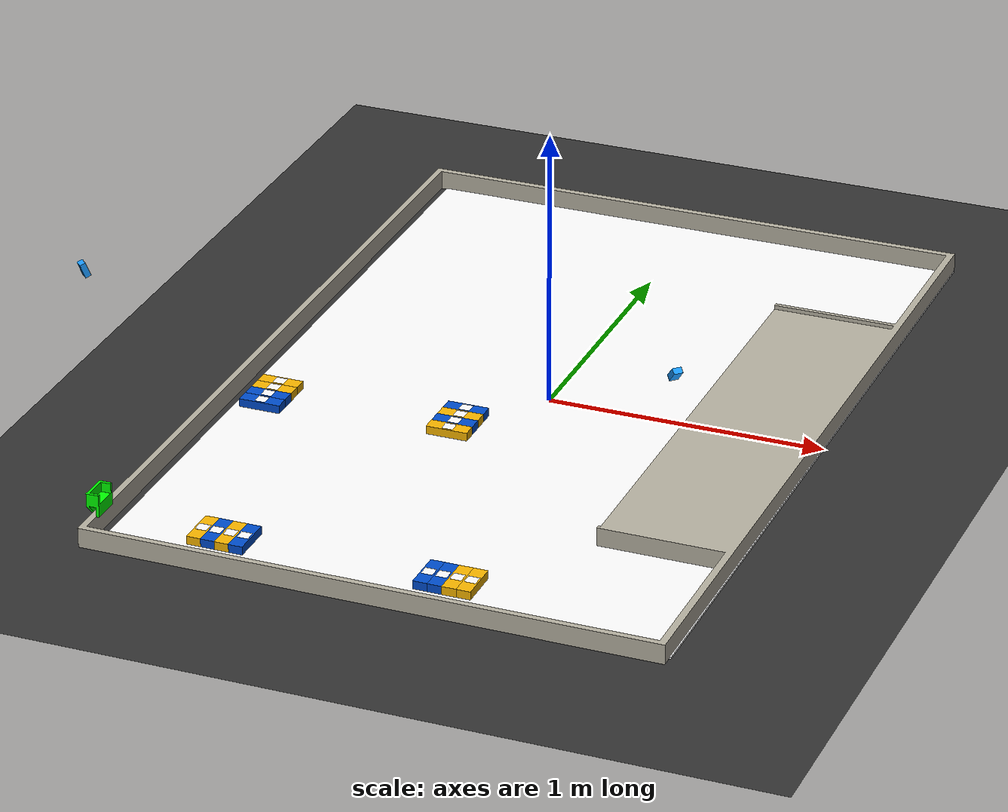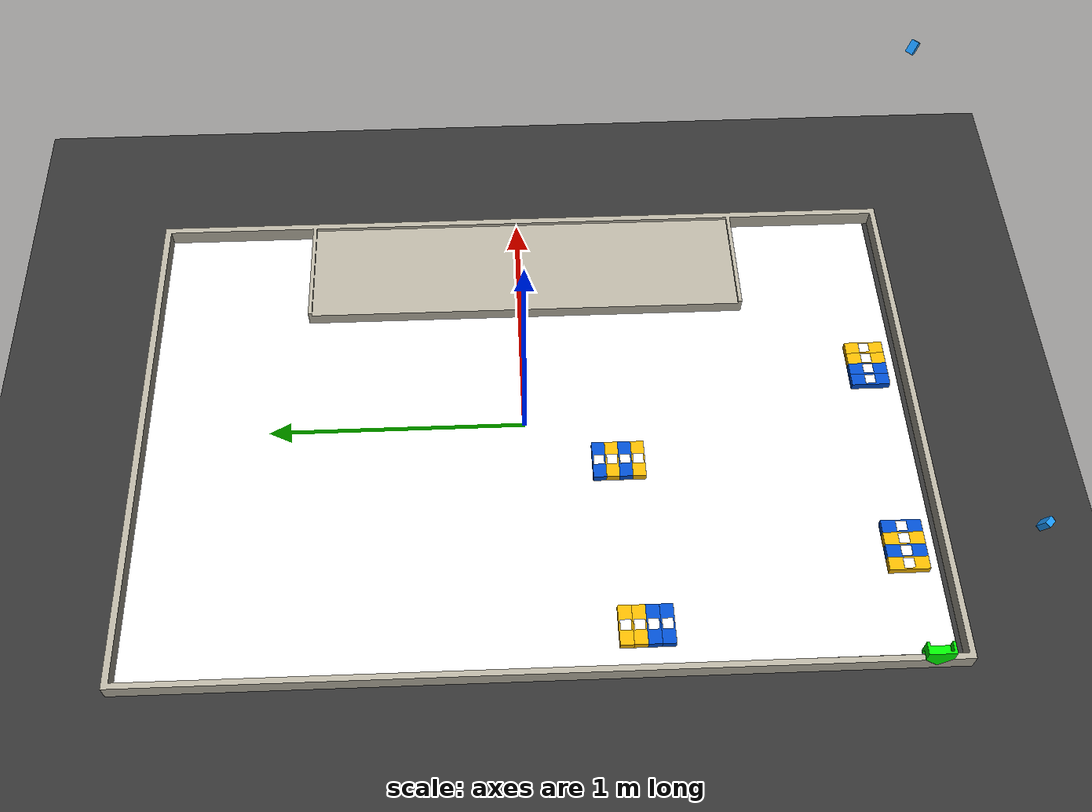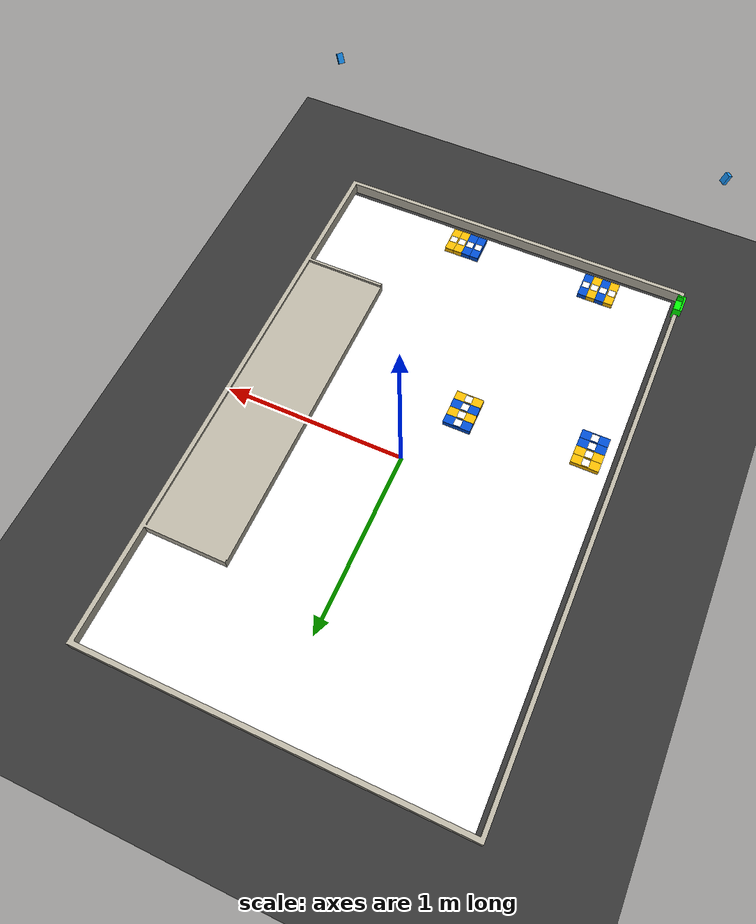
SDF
<?xml version="1.0"?>
<sdf version="1.9">
  <world name="eurobot_2026_arena">
    <!-- Set the background color -->
    <background>
      <color>0.7 0.7 0.7 1</color>
    </background>

    <!-- Add a light source -->
    <light type="directional" name="sun">
      <diffuse>1 1 1 1</diffuse>
      <specular>0.5 0.5 0.5 1</specular>
      <direction>-0.5 0.5 -1</direction>
    </light>

    <!-- Set the gravity of the world -->
    <gravity>0 0 -9.81</gravity>

    <!-- Set the physics engine -->
    <physics type="ode">
      <max_step_size>0.001</max_step_size>
      <real_time_factor>1</real_time_factor>
    </physics>
    <plugin
        filename="libignition-gazebo-physics-system.so"
        name="ignition::gazebo::systems::Physics">
    </plugin>
    <plugin
        filename="libignition-gazebo-user-commands-system.so"
        name="ignition::gazebo::systems::UserCommands">
    </plugin>
    <plugin
        filename="libignition-gazebo-scene-broadcaster-system.so"
        name="ignition::gazebo::systems::SceneBroadcaster">
    </plugin>
    <plugin
        filename="libignition-gazebo-sensors-system.so"
        name="ignition::gazebo::systems::Sensors">
    </plugin>

    <model name="ground_plane">
        <static>true</static>
        <link name="link">
            <collision name="collision">
            <geometry>
                <plane>
                <normal>0 0 1</normal>
                </plane>
            </geometry>
            </collision>
            <visual name="visual">
            <geometry>
                <plane>
                <normal>0 0 1</normal>
                <size>20 20</size>
                </plane>
            </geometry>
            <material>
                <ambient>0.8 0.8 0.8 1</ambient>
                <diffuse>0.2 0.2 0.2 1</diffuse>
                <specular>0.8 0.8 0.8 1</specular>
            </material>
            </visual>
        </link>
    </model>

    <model name="top_camera">
      <static>true</static>
      <pose> 0 0 1 0 0 0 </pose>
        <link name="camera_link_1">
          <pose>1 -1.5 0 0 0.85 2.3562</pose>

          <!-- Visualize camera to check camera pose -->
          <visual name="viz">
            <geometry><box><size>0.05 0.03 0.02</size></box></geometry>
            <material><ambient>0.1 0.6 1 1</ambient></material>
          </visual>

          <sensor name="camera_1" type="camera">
            <always_on>true</always_on>
            <update_rate>30</update_rate>         <!-- 30 FPS -->
            <visualize>true</visualize>
            <topic>/top_camera/image_1</topic>

            <camera>
              <horizontal_fov>1.0471976</horizontal_fov> <!-- about 60° -->
              <image>
                <width>640</width>
                <height>480</height>
                <format>RGB_INT8</format>
              </image>
              <clip>
                <near>0.05</near>
                <far>100</far>
              </clip>
            </camera>
          </sensor>
        </link>
        <link name="camera_link_2">
          <pose>-1 -1.5 0 0 1.2 0.7854</pose>

          <!-- Visualize camera to check camera pose -->
          <visual name="viz">
            <geometry><box><size>0.05 0.03 0.02</size></box></geometry>
            <material><ambient>0.1 0.6 1 1</ambient></material>
          </visual>

          <sensor name="camera_2" type="camera">
            <always_on>true</always_on>
            <update_rate>30</update_rate>         <!-- 30 FPS -->
            <visualize>true</visualize>
            <topic>/top_camera/image_2</topic>

            <camera>
              <horizontal_fov>1.0471976</horizontal_fov> <!-- about 60° -->
              <image>
                <width>640</width>
                <height>480</height>
                <format>RGB_INT8</format>
              </image>
              <clip>
                <near>0.05</near>
                <far>100</far>
              </clip>
            </camera>
          </sensor>
        </link>
    </model>

    <!-- Include mat model -->
    <include>
      <uri>file://models/mat</uri>
      <pose>0 0 0 0 0 0</pose>
    </include>
    <include>
      <uri>models://models/arena3D</uri>
      <pose>1 1.5 0 0 0 3.14</pose>
    </include>
    <include>
      <uri>models://models/cursor</uri>
      <pose>-1.05 -1.40 0.1 0 0 3.14</pose>
    </include>
  <!-- BEGIN: auto-generated crate includes (right half, corrected axes) -->
    <include>
      <uri>model://crate_blue</uri>
      <name>crate_blue_001</name>
      <pose>-0.200000 -0.275000 0.050000 0 0 0.000000</pose>
    </include>
    <include>
      <uri>model://crate_yellow</uri>
      <name>crate_yellow_002</name>
      <pose>-0.200000 -0.325000 0.050000 0 0 0.000000</pose>
    </include>
    <include>
      <uri>model://crate_blue</uri>
      <name>crate_blue_003</name>
      <pose>-0.200000 -0.375000 0.050000 0 0 0.000000</pose>
    </include>
    <include>
      <uri>model://crate_yellow</uri>
      <name>crate_yellow_004</name>
      <pose>-0.200000 -0.425000 0.050000 0 0 0.000000</pose>
    </include>
    <include>
      <uri>model://crate_yellow</uri>
      <name>crate_yellow_005</name>
      <pose>-0.875000 -0.325000 0.050000 0 0 0.000000</pose>
    </include>
    <include>
      <uri>model://crate_yellow</uri>
      <name>crate_yellow_006</name>
      <pose>-0.875000 -0.375000 0.050000 0 0 0.000000</pose>
    </include>
    <include>
      <uri>model://crate_blue</uri>
      <name>crate_blue_007</name>
      <pose>-0.875000 -0.425000 0.050000 0 0 0.000000</pose>
    </include>
    <include>
      <uri>model://crate_blue</uri>
      <name>crate_blue_008</name>
      <pose>-0.875000 -0.475000 0.050000 0 0 0.000000</pose>
    </include>
    <include>
      <uri>model://crate_yellow</uri>
      <name>crate_yellow_009</name>
      <pose>-0.675000 -1.375000 0.050000 0 0 -1.570796</pose>
    </include>
    <include>
      <uri>model://crate_blue</uri>
      <name>crate_blue_010</name>
      <pose>-0.625000 -1.375000 0.050000 0 0 -1.570796</pose>
    </include>
    <include>
      <uri>model://crate_yellow</uri>
      <name>crate_yellow_011</name>
      <pose>-0.575000 -1.375000 0.050000 0 0 -1.570796</pose>
    </include>
    <include>
      <uri>model://crate_blue</uri>
      <name>crate_blue_012</name>
      <pose>-0.525000 -1.375000 0.050000 0 0 -1.570796</pose>
    </include>
    <include>
      <uri>model://crate_blue</uri>
      <name>crate_blue_013</name>
      <pose>0.125000 -1.375000 0.050000 0 0 -1.570796</pose>
    </include>
    <include>
      <uri>model://crate_blue</uri>
      <name>crate_blue_014</name>
      <pose>0.175000 -1.375000 0.050000 0 0 -1.570796</pose>
    </include>
    <include>
      <uri>model://crate_yellow</uri>
      <name>crate_yellow_015</name>
      <pose>0.225000 -1.375000 0.050000 0 0 -1.570796</pose>
    </include>
    <include>
      <uri>model://crate_yellow</uri>
      <name>crate_yellow_016</name>
      <pose>0.275000 -1.375000 0.050000 0 0 -1.570796</pose>
    </include>
  <!-- END: auto-generated crate includes -->
  </world>
</sdf>

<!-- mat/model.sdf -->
<sdf version="1.9">
  <!-- Define a floor mat (3000mm x 2000mm x 70mm) -->
	<model name="floor_mat">
		<static>true</static>
		<link name="floor_link">
			<collision name="collision">
				<geometry>
					<box>
						<size>2 3 0.007</size>  <!-- 3000mm x 2000mm x 70mm -->
					</box>
				</geometry>
				<surface>
					<friction>
						<ode>
							<mu>0.9</mu>
							<mu2>0.9</mu2>
						</ode>
					</friction>
				</surface>
			</collision>
			<visual name="visual">
					<geometry>
							<box>
									<size>2 3 0.007</size> <!-- 3000mm x 2000mm x 70mm -->
							</box>
					</geometry>
					<material>
							<diffuse>1 1 1 1</diffuse>
							<pbr>
									<metal>
											<albedo_map>file:///models/mat/table_FINALE_smaller.png</albedo_map>
											<metalness>0.0</metalness>
											<roughness>0.8</roughness>
									</metal>
							</pbr>
					</material>
			</visual>
		</link>
	</model>
</sdf>

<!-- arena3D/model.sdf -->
<sdf version="1.9">
  <model name="arena3D">
    <static>true</static>
    <link name="link">
      <collision name="collision">
        <geometry>
          <mesh>
            <!--i don't know why it doesnt work -->
            <uri>meshes/arena3D.stl</uri>
            <scale>0.001 0.001 0.001</scale>
          </mesh>
        </geometry>
        <surface>
          <friction>
            <ode>
              <mu>1.0</mu>
              <mu2>1.0</mu2>
            </ode>
          </friction>
          <bounce/>
          <contact/>
        </surface>
      </collision>

      <visual name="visual">
        <geometry>
            <mesh>
              <uri>meshes/arena3D.dae</uri>
              <scale>0.001 0.001 0.001</scale>
            </mesh>
        </geometry>
        <material>
          <ambient>0.71 0.69 0.63 1.0</ambient>
          <diffuse>0.71 0.69 0.63 1.0</diffuse>
          <specular>0.1 0.1 0.1 1.0</specular>
          <emissive>0 0 0 1.0</emissive>
        </material>
      </visual>
    </link>
  </model>
</sdf>

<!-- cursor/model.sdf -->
<sdf version="1.9">
  <model name="cursor">
    <link name="link">
      <collision name="collision">
        <geometry>
          <mesh>
            <uri>meshes/cursor.stl</uri>
            <scale>0.001 0.001 0.001</scale>
          </mesh>
        </geometry>
        <surface>
          <friction>
            <ode>
              <mu>1.0</mu>
              <mu2>1.0</mu2>
            </ode>
          </friction>
          <bounce/>
          <contact/>
        </surface>
      </collision>

      <visual name="visual">
        <geometry>
            <mesh>
              <uri>meshes/cursor.dae</uri>
              <scale>0.001 0.001 0.001</scale>
            </mesh>
        </geometry>
        <material>
          <ambient>0.0 1.0 0.0 1.0</ambient>
          <diffuse>0.0 1.0 0.0 1.0</diffuse>
          <specular>0.1 0.1 0.1 1.0</specular>
          <emissive>0.0 0.0 0.0 1.0</emissive>
        </material>
      </visual>
    </link>
  </model>
</sdf>

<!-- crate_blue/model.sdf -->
<sdf version="1.9">
  <model name="Crate">
    <static>false</static>
    <link name="link">
      <inertial>
        <mass>0.17</mass>
        <inertia>
          <ixx>0.166</ixx>
          <iyy>0.166</iyy>
          <izz>0.166</izz>
          <ixy>0</ixy>
          <ixz>0</ixz>
          <iyz>0</iyz>
        </inertia>
      </inertial>

      <collision name="collision">
        <geometry>
          <box>
            <size>0.15 0.05 0.03</size>
          </box>
        </geometry>
        <surface>
          <friction>
            <ode>
              <mu>1.0</mu>
              <mu2>1.0</mu2>
            </ode>
          </friction>
          <bounce/>
          <contact/>
        </surface>
      </collision>

      <visual name="visual">
        <geometry>
          <box>
            <size>0.15 0.05 0.03</size>
          </box>
        </geometry>
        <material>
          <ambient>0.0 0.3 0.8 1</ambient>
          <diffuse>0.0 0.3 0.8 1</diffuse>
          <specular>0.2 0.2 0.2 1</specular>
        </material>
      </visual>
      <visual name="aruco_top">
        <pose>0 0 0.0155 0 0 0</pose>
        <cast_shadows>false</cast_shadows>
        <geometry>
          <plane>
            <size>0.04 0.04</size>
            <normal>0 0 1</normal>
            <texture>
              <size>0.03 0.03</size>
            </texture>
          </plane>
        </geometry>
        <material>
          <diffuse>1 1 1 1</diffuse>
          <!-- ↑this is must!!!! -->
          <pbr>
            <metal>
              <albedo_map>model://models/aruco/aruco_36.png</albedo_map>
            </metal>
          </pbr>
          <double_sided>true</double_sided>
        </material>
      </visual>
    </link>
  </model>
</sdf>

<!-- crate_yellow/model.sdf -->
<sdf version="1.9">
  <model name="Crate_yellow">
    <static>false</static>
    <link name="link">
      <inertial>
        <mass>0.17</mass>
        <inertia>
          <ixx>0.166</ixx>
          <iyy>0.166</iyy>
          <izz>0.166</izz>
          <ixy>0</ixy>
          <ixz>0</ixz>
          <iyz>0</iyz>
        </inertia>
      </inertial>

      <collision name="collision">
        <geometry>
          <box>
            <size>0.15 0.05 0.03</size>
          </box>
        </geometry>
        <surface>
          <friction>
            <ode>
              <mu>1.0</mu>
              <mu2>1.0</mu2>
            </ode>
          </friction>
          <bounce/>
          <contact/>
        </surface>
      </collision>

      <visual name="visual">
        <geometry>
          <box>
            <size>0.15 0.05 0.03</size>
          </box>
        </geometry>
        <material>
          <ambient>0.969 0.710 0.000 1</ambient>
          <diffuse>0.969 0.710 0.000 1</diffuse>
          <specular>0.2 0.2 0.2 1</specular>
        </material>
      </visual>
      <visual name="aruco_top">
        <pose>0 0 0.0155 0 0 0</pose>
        <cast_shadows>false</cast_shadows>
        <geometry>
          <plane>
            <size>0.04 0.04</size>
            <normal>0 0 1</normal>
            <texture>
              <size>0.03 0.03</size>
            </texture>
          </plane>
        </geometry>
        <material>
          <diffuse>1 1 1 1</diffuse>
          <!-- ↑this is must!!!! -->
          <pbr>
            <metal>
              <albedo_map>model://models/aruco/aruco_47.png</albedo_map>
            </metal>
          </pbr>
          <double_sided>true</double_sided>
        </material>
      </visual>
    </link>
  </model>
</sdf>
